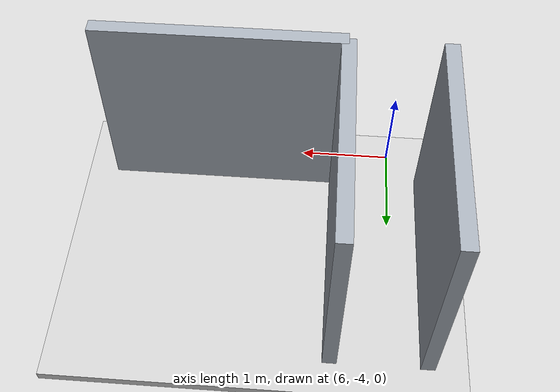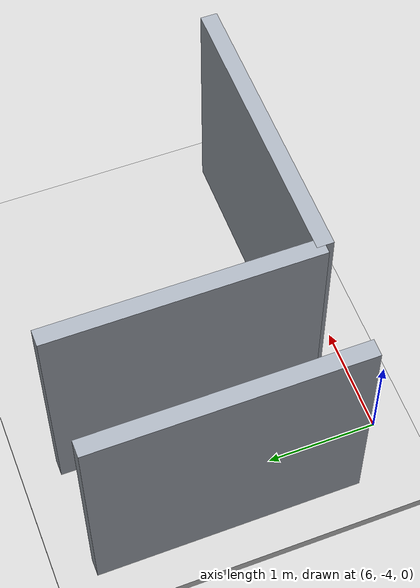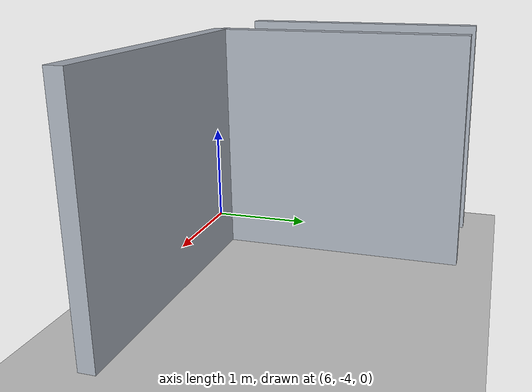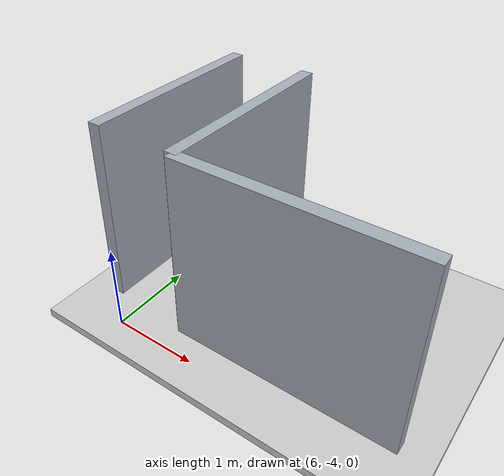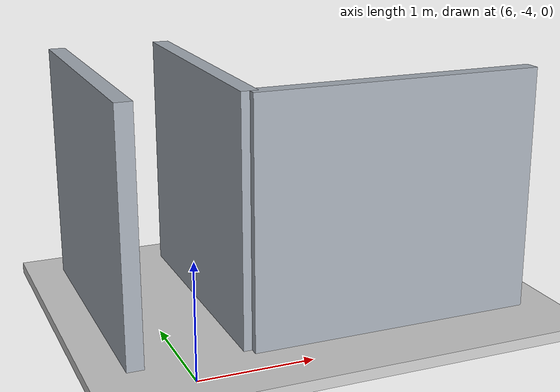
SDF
<sdf version="1.9">
 <world name="default">
  <model name="ground_plane">
   <static>true</static>
   <pose>4.95 0 -0.05 0 0 0</pose>
   <link name="body">
    <collision name="collision"><geometry><box><size>13.9 12 0.1</size></box></geometry></collision>
    <visual name="visual">
     <geometry><box><size>13.9 12 0.1</size></box></geometry>
     <material><ambient>0.8 0.8 0.8 1</ambient><diffuse>0.8 0.8 0.8 1</diffuse></material>
    </visual>
   </link>
  </model>
  <model name="room_-1_1_1">
   <static>true</static>
   <pose>5.6 -2.45 1.1 0 0 0</pose>
   <link name="body">
    <collision name="collision"><geometry><box><size>0.15 2.4 2.2</size></box></geometry></collision>
    <visual name="visual">
     <geometry><box><size>0.15 2.4 2.2</size></box></geometry>
     <material><ambient>0.65 0.68 0.72 1</ambient><diffuse>0.65 0.68 0.72 1</diffuse></material>
    </visual>
   </link>
  </model>
  <model name="room_-1_2_-1">
   <static>true</static>
   <pose>6.6000000000000005 -2.45 1.1 0 0 0</pose>
   <link name="body">
    <collision name="collision"><geometry><box><size>0.15 2.4 2.2</size></box></geometry></collision>
    <visual name="visual">
     <geometry><box><size>0.15 2.4 2.2</size></box></geometry>
     <material><ambient>0.65 0.68 0.72 1</ambient><diffuse>0.65 0.68 0.72 1</diffuse></material>
    </visual>
   </link>
  </model>
  <model name="room_end_-1_2">
   <static>true</static>
   <pose>7.9 -3.65 1.1 0 0 0</pose>
   <link name="body">
    <collision name="collision"><geometry><box><size>2.6 0.15 2.2</size></box></geometry></collision>
    <visual name="visual">
     <geometry><box><size>2.6 0.15 2.2</size></box></geometry>
     <material><ambient>0.65 0.68 0.72 1</ambient><diffuse>0.65 0.68 0.72 1</diffuse></material>
    </visual>
   </link>
  </model>
 </world>
</sdf>
